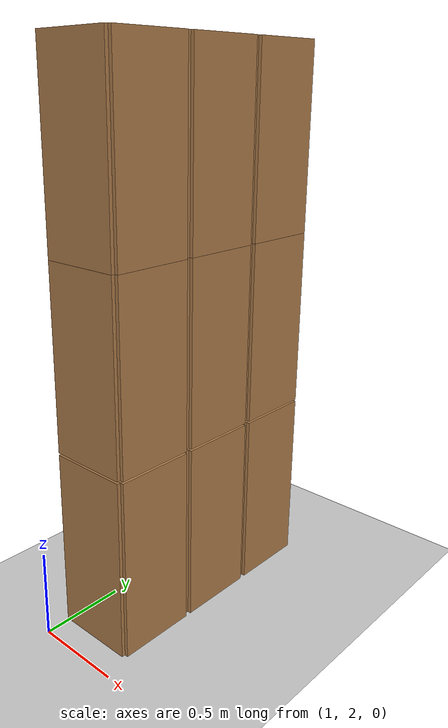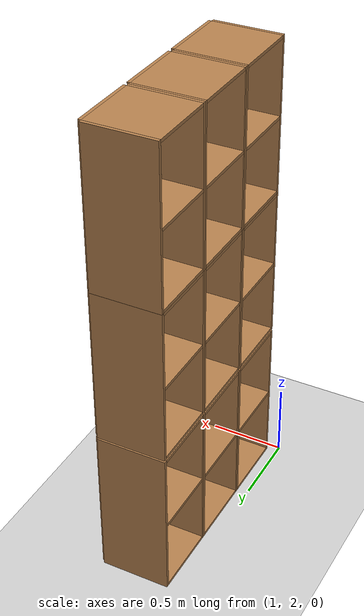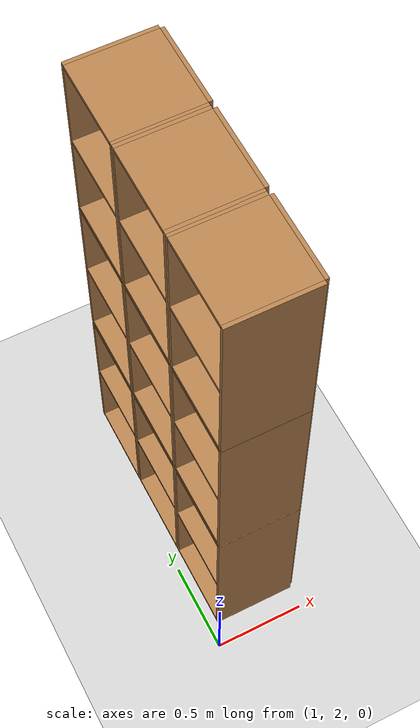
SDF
<sdf version="1.6">
 <world name="default">
  <model name="ground_plane">
   <static>1</static>
   <link name="link">
    <collision name="collision">
     <geometry><plane><normal>0 0 1</normal><size>100 100</size></plane></geometry>
     <surface>
      <contact><collide_bitmask>65535</collide_bitmask></contact>
      <friction><ode><mu>100</mu><mu2>50</mu2></ode></friction>
     </surface>
    </collision>
    <visual name="visual">
     <cast_shadows>0</cast_shadows>
     <geometry><plane><normal>0 0 1</normal><size>100 100</size></plane></geometry>
     <material>
      <script><uri>file://media/materials/scripts/gazebo.material</uri><name>Gazebo/Grey</name></script>
     </material>
    </visual>
   </link>
  </model>
  <model name="Locker18_clone_4_clone_2_clone_1">
   <model name="Locker18">
    <model name="Locker3">
     <model name="cabinet">
      <static>1</static>
      <link name="cabinet_bottom_plate">
       <inertial>
        <pose>0 0 -1 0 -0 0</pose>
        <inertia><ixx>2.05</ixx><ixy>0</ixy><ixz>0</ixz><iyy>2.05</iyy><iyz>0</iyz><izz>2.05</izz></inertia>
        <mass>25</mass>
       </inertial>
       <collision name="cabinet_bottom_plate_geom">
        <pose>0 0 0.01 0 -0 0</pose>
        <geometry><box><size>0.45 0.45 0.02</size></box></geometry>
       </collision>
       <visual name="cabinet_bottom_plate_geom_visual">
        <pose>0 0 0.01 0 -0 0</pose>
        <geometry><box><size>0.45 0.45 0.02</size></box></geometry>
        <material>
         <script><uri>file://media/materials/scripts/gazebo.material</uri><name>Gazebo/Wood</name></script>
        </material>
       </visual>
       <collision name="cabinet_bottom_plate_geom_cabinet_back_plate">
        <pose>0.235 0 0.51 0 -0 0</pose>
        <geometry><box><size>0.02 0.45 1.02</size></box></geometry>
       </collision>
       <visual name="cabinet_bottom_plate_geom_cabinet_back_plate_visual">
        <pose>0.235 0 0.51 0 -0 0</pose>
        <geometry><box><size>0.02 0.45 1.02</size></box></geometry>
        <material>
         <script><uri>file://media/materials/scripts/gazebo.material</uri><name>Gazebo/Wood</name></script>
        </material>
       </visual>
       <collision name="cabinet_bottom_plate_geom_cabinet_left_plate">
        <pose>0 0.235 0.51 0 -0 0</pose>
        <geometry><box><size>0.45 0.02 1.02</size></box></geometry>
       </collision>
       <visual name="cabinet_bottom_plate_geom_cabinet_left_plate_visual">
        <pose>0 0.235 0.51 0 -0 0</pose>
        <geometry><box><size>0.45 0.02 1.02</size></box></geometry>
        <material>
         <script><uri>file://media/materials/scripts/gazebo.material</uri><name>Gazebo/Wood</name></script>
        </material>
       </visual>
       <collision name="cabinet_bottom_plate_geom_cabinet_middle_plate">
        <pose>0 0 0.51 0 -0 0</pose>
        <geometry><box><size>0.45 0.45 0.02</size></box></geometry>
       </collision>
       <visual name="cabinet_bottom_plate_geom_cabinet_middle_plate_visual">
        <pose>0 0 0.51 0 -0 0</pose>
        <geometry><box><size>0.45 0.45 0.02</size></box></geometry>
        <material>
         <script><uri>file://media/materials/scripts/gazebo.material</uri><name>Gazebo/Wood</name></script>
        </material>
       </visual>
       <collision name="cabinet_bottom_plate_geom_cabinet_right_plate">
        <pose>0 -0.235 0.51 0 -0 0</pose>
        <geometry><box><size>0.45 0.02 1.02</size></box></geometry>
       </collision>
       <visual name="cabinet_bottom_plate_geom_cabinet_right_plate_visual">
        <pose>0 -0.235 0.51 0 -0 0</pose>
        <geometry><box><size>0.45 0.02 1.02</size></box></geometry>
        <material>
         <script><uri>file://media/materials/scripts/gazebo.material</uri><name>Gazebo/Wood</name></script>
        </material>
       </visual>
       <collision name="cabinet_bottom_plate_geom_cabinet_top_plate">
        <pose>0 0 1.01 0 -0 0</pose>
        <geometry><box><size>0.45 0.45 0.02</size></box></geometry>
       </collision>
       <visual name="cabinet_bottom_plate_geom_cabinet_top_plate_visual">
        <pose>0 0 1.01 0 -0 0</pose>
        <geometry><box><size>0.45 0.45 0.02</size></box></geometry>
        <material>
         <script><uri>file://media/materials/scripts/gazebo.material</uri><name>Gazebo/Wood</name></script>
        </material>
       </visual>
      </link>
      <pose>-0.676968 1.45758 0 0 -0 0</pose>
     </model>
     <model name="cabinet_clone">
      <static>1</static>
      <link name="cabinet_bottom_plate">
       <inertial>
        <pose>0 0 -1 0 -0 0</pose>
        <inertia><ixx>2.05</ixx><ixy>0</ixy><ixz>0</ixz><iyy>2.05</iyy><iyz>0</iyz><izz>2.05</izz></inertia>
        <mass>25</mass>
       </inertial>
       <collision name="cabinet_bottom_plate_geom">
        <pose>0 0 0.01 0 -0 0</pose>
        <geometry><box><size>0.45 0.45 0.02</size></box></geometry>
       </collision>
       <visual name="cabinet_bottom_plate_geom_visual">
        <pose>0 0 0.01 0 -0 0</pose>
        <geometry><box><size>0.45 0.45 0.02</size></box></geometry>
        <material>
         <script><uri>file://media/materials/scripts/gazebo.material</uri><name>Gazebo/Wood</name></script>
        </material>
       </visual>
       <collision name="cabinet_bottom_plate_geom_cabinet_back_plate">
        <pose>0.235 0 0.51 0 -0 0</pose>
        <geometry><box><size>0.02 0.45 1.02</size></box></geometry>
       </collision>
       <visual name="cabinet_bottom_plate_geom_cabinet_back_plate_visual">
        <pose>0.235 0 0.51 0 -0 0</pose>
        <geometry><box><size>0.02 0.45 1.02</size></box></geometry>
        <material>
         <script><uri>file://media/materials/scripts/gazebo.material</uri><name>Gazebo/Wood</name></script>
        </material>
       </visual>
       <collision name="cabinet_bottom_plate_geom_cabinet_left_plate">
        <pose>0 0.235 0.51 0 -0 0</pose>
        <geometry><box><size>0.45 0.02 1.02</size></box></geometry>
       </collision>
       <visual name="cabinet_bottom_plate_geom_cabinet_left_plate_visual">
        <pose>0 0.235 0.51 0 -0 0</pose>
        <geometry><box><size>0.45 0.02 1.02</size></box></geometry>
        <material>
         <script><uri>file://media/materials/scripts/gazebo.material</uri><name>Gazebo/Wood</name></script>
        </material>
       </visual>
       <collision name="cabinet_bottom_plate_geom_cabinet_middle_plate">
        <pose>0 0 0.51 0 -0 0</pose>
        <geometry><box><size>0.45 0.45 0.02</size></box></geometry>
       </collision>
       <visual name="cabinet_bottom_plate_geom_cabinet_middle_plate_visual">
        <pose>0 0 0.51 0 -0 0</pose>
        <geometry><box><size>0.45 0.45 0.02</size></box></geometry>
        <material>
         <script><uri>file://media/materials/scripts/gazebo.material</uri><name>Gazebo/Wood</name></script>
        </material>
       </visual>
       <collision name="cabinet_bottom_plate_geom_cabinet_right_plate">
        <pose>0 -0.235 0.51 0 -0 0</pose>
        <geometry><box><size>0.45 0.02 1.02</size></box></geometry>
       </collision>
       <visual name="cabinet_bottom_plate_geom_cabinet_right_plate_visual">
        <pose>0 -0.235 0.51 0 -0 0</pose>
        <geometry><box><size>0.45 0.02 1.02</size></box></geometry>
        <material>
         <script><uri>file://media/materials/scripts/gazebo.material</uri><name>Gazebo/Wood</name></script>
        </material>
       </visual>
       <collision name="cabinet_bottom_plate_geom_cabinet_top_plate">
        <pose>0 0 1.01 0 -0 0</pose>
        <geometry><box><size>0.45 0.45 0.02</size></box></geometry>
       </collision>
       <visual name="cabinet_bottom_plate_geom_cabinet_top_plate_visual">
        <pose>0 0 1.01 0 -0 0</pose>
        <geometry><box><size>0.45 0.45 0.02</size></box></geometry>
        <material>
         <script><uri>file://media/materials/scripts/gazebo.material</uri><name>Gazebo/Wood</name></script>
        </material>
       </visual>
      </link>
      <pose>-0.676968 0.970971 0 0 -0 0</pose>
     </model>
     <model name="cabinet_clone_0">
      <static>1</static>
      <link name="cabinet_bottom_plate">
       <inertial>
        <pose>0 0 -1 0 -0 0</pose>
        <inertia><ixx>2.05</ixx><ixy>0</ixy><ixz>0</ixz><iyy>2.05</iyy><iyz>0</iyz><izz>2.05</izz></inertia>
        <mass>25</mass>
       </inertial>
       <collision name="cabinet_bottom_plate_geom">
        <pose>0 0 0.01 0 -0 0</pose>
        <geometry><box><size>0.45 0.45 0.02</size></box></geometry>
       </collision>
       <visual name="cabinet_bottom_plate_geom_visual">
        <pose>0 0 0.01 0 -0 0</pose>
        <geometry><box><size>0.45 0.45 0.02</size></box></geometry>
        <material>
         <script><uri>file://media/materials/scripts/gazebo.material</uri><name>Gazebo/Wood</name></script>
        </material>
       </visual>
       <collision name="cabinet_bottom_plate_geom_cabinet_back_plate">
        <pose>0.235 0 0.51 0 -0 0</pose>
        <geometry><box><size>0.02 0.45 1.02</size></box></geometry>
       </collision>
       <visual name="cabinet_bottom_plate_geom_cabinet_back_plate_visual">
        <pose>0.235 0 0.51 0 -0 0</pose>
        <geometry><box><size>0.02 0.45 1.02</size></box></geometry>
        <material>
         <script><uri>file://media/materials/scripts/gazebo.material</uri><name>Gazebo/Wood</name></script>
        </material>
       </visual>
       <collision name="cabinet_bottom_plate_geom_cabinet_left_plate">
        <pose>0 0.235 0.51 0 -0 0</pose>
        <geometry><box><size>0.45 0.02 1.02</size></box></geometry>
       </collision>
       <visual name="cabinet_bottom_plate_geom_cabinet_left_plate_visual">
        <pose>0 0.235 0.51 0 -0 0</pose>
        <geometry><box><size>0.45 0.02 1.02</size></box></geometry>
        <material>
         <script><uri>file://media/materials/scripts/gazebo.material</uri><name>Gazebo/Wood</name></script>
        </material>
       </visual>
       <collision name="cabinet_bottom_plate_geom_cabinet_middle_plate">
        <pose>0 0 0.51 0 -0 0</pose>
        <geometry><box><size>0.45 0.45 0.02</size></box></geometry>
       </collision>
       <visual name="cabinet_bottom_plate_geom_cabinet_middle_plate_visual">
        <pose>0 0 0.51 0 -0 0</pose>
        <geometry><box><size>0.45 0.45 0.02</size></box></geometry>
        <material>
         <script><uri>file://media/materials/scripts/gazebo.material</uri><name>Gazebo/Wood</name></script>
        </material>
       </visual>
       <collision name="cabinet_bottom_plate_geom_cabinet_right_plate">
        <pose>0 -0.235 0.51 0 -0 0</pose>
        <geometry><box><size>0.45 0.02 1.02</size></box></geometry>
       </collision>
       <visual name="cabinet_bottom_plate_geom_cabinet_right_plate_visual">
        <pose>0 -0.235 0.51 0 -0 0</pose>
        <geometry><box><size>0.45 0.02 1.02</size></box></geometry>
        <material>
         <script><uri>file://media/materials/scripts/gazebo.material</uri><name>Gazebo/Wood</name></script>
        </material>
       </visual>
       <collision name="cabinet_bottom_plate_geom_cabinet_top_plate">
        <pose>0 0 1.01 0 -0 0</pose>
        <geometry><box><size>0.45 0.45 0.02</size></box></geometry>
       </collision>
       <visual name="cabinet_bottom_plate_geom_cabinet_top_plate_visual">
        <pose>0 0 1.01 0 -0 0</pose>
        <geometry><box><size>0.45 0.45 0.02</size></box></geometry>
        <material>
         <script><uri>file://media/materials/scripts/gazebo.material</uri><name>Gazebo/Wood</name></script>
        </material>
       </visual>
      </link>
      <pose>-0.676968 0.48391 0 0 -0 0</pose>
     </model>
     <static>0</static>
     <pose>0 3e-06 -1.02763 0 -0 0</pose>
    </model>
    <model name="Locker3_clone">
     <model name="cabinet">
      <static>1</static>
      <link name="cabinet_bottom_plate">
       <inertial>
        <pose>0 0 -1 0 -0 0</pose>
        <inertia><ixx>2.05</ixx><ixy>0</ixy><ixz>0</ixz><iyy>2.05</iyy><iyz>0</iyz><izz>2.05</izz></inertia>
        <mass>25</mass>
       </inertial>
       <collision name="cabinet_bottom_plate_geom">
        <pose>0 0 0.01 0 -0 0</pose>
        <geometry><box><size>0.45 0.45 0.02</size></box></geometry>
       </collision>
       <visual name="cabinet_bottom_plate_geom_visual">
        <pose>0 0 0.01 0 -0 0</pose>
        <geometry><box><size>0.45 0.45 0.02</size></box></geometry>
        <material>
         <script><uri>file://media/materials/scripts/gazebo.material</uri><name>Gazebo/Wood</name></script>
        </material>
       </visual>
       <collision name="cabinet_bottom_plate_geom_cabinet_back_plate">
        <pose>0.235 0 0.51 0 -0 0</pose>
        <geometry><box><size>0.02 0.45 1.02</size></box></geometry>
       </collision>
       <visual name="cabinet_bottom_plate_geom_cabinet_back_plate_visual">
        <pose>0.235 0 0.51 0 -0 0</pose>
        <geometry><box><size>0.02 0.45 1.02</size></box></geometry>
        <material>
         <script><uri>file://media/materials/scripts/gazebo.material</uri><name>Gazebo/Wood</name></script>
        </material>
       </visual>
       <collision name="cabinet_bottom_plate_geom_cabinet_left_plate">
        <pose>0 0.235 0.51 0 -0 0</pose>
        <geometry><box><size>0.45 0.02 1.02</size></box></geometry>
       </collision>
       <visual name="cabinet_bottom_plate_geom_cabinet_left_plate_visual">
        <pose>0 0.235 0.51 0 -0 0</pose>
        <geometry><box><size>0.45 0.02 1.02</size></box></geometry>
        <material>
         <script><uri>file://media/materials/scripts/gazebo.material</uri><name>Gazebo/Wood</name></script>
        </material>
       </visual>
       <collision name="cabinet_bottom_plate_geom_cabinet_middle_plate">
        <pose>0 0 0.51 0 -0 0</pose>
        <geometry><box><size>0.45 0.45 0.02</size></box></geometry>
       </collision>
       <visual name="cabinet_bottom_plate_geom_cabinet_middle_plate_visual">
        <pose>0 0 0.51 0 -0 0</pose>
        <geometry><box><size>0.45 0.45 0.02</size></box></geometry>
        <material>
         <script><uri>file://media/materials/scripts/gazebo.material</uri><name>Gazebo/Wood</name></script>
        </material>
       </visual>
       <collision name="cabinet_bottom_plate_geom_cabinet_right_plate">
        <pose>0 -0.235 0.51 0 -0 0</pose>
        <geometry><box><size>0.45 0.02 1.02</size></box></geometry>
       </collision>
       <visual name="cabinet_bottom_plate_geom_cabinet_right_plate_visual">
        <pose>0 -0.235 0.51 0 -0 0</pose>
        <geometry><box><size>0.45 0.02 1.02</size></box></geometry>
        <material>
         <script><uri>file://media/materials/scripts/gazebo.material</uri><name>Gazebo/Wood</name></script>
        </material>
       </visual>
       <collision name="cabinet_bottom_plate_geom_cabinet_top_plate">
        <pose>0 0 1.01 0 -0 0</pose>
        <geometry><box><size>0.45 0.45 0.02</size></box></geometry>
       </collision>
       <visual name="cabinet_bottom_plate_geom_cabinet_top_plate_visual">
        <pose>0 0 1.01 0 -0 0</pose>
        <geometry><box><size>0.45 0.45 0.02</size></box></geometry>
        <material>
         <script><uri>file://media/materials/scripts/gazebo.material</uri><name>Gazebo/Wood</name></script>
        </material>
       </visual>
      </link>
      <pose>-0.676968 1.45758 0 0 -0 0</pose>
     </model>
     <model name="cabinet_clone">
      <static>1</static>
      <link name="cabinet_bottom_plate">
       <inertial>
        <pose>0 0 -1 0 -0 0</pose>
        <inertia><ixx>2.05</ixx><ixy>0</ixy><ixz>0</ixz><iyy>2.05</iyy><iyz>0</iyz><izz>2.05</izz></inertia>
        <mass>25</mass>
       </inertial>
       <collision name="cabinet_bottom_plate_geom">
        <pose>0 0 0.01 0 -0 0</pose>
        <geometry><box><size>0.45 0.45 0.02</size></box></geometry>
       </collision>
       <visual name="cabinet_bottom_plate_geom_visual">
        <pose>0 0 0.01 0 -0 0</pose>
        <geometry><box><size>0.45 0.45 0.02</size></box></geometry>
        <material>
         <script><uri>file://media/materials/scripts/gazebo.material</uri><name>Gazebo/Wood</name></script>
        </material>
       </visual>
       <collision name="cabinet_bottom_plate_geom_cabinet_back_plate">
        <pose>0.235 0 0.51 0 -0 0</pose>
        <geometry><box><size>0.02 0.45 1.02</size></box></geometry>
       </collision>
       <visual name="cabinet_bottom_plate_geom_cabinet_back_plate_visual">
        <pose>0.235 0 0.51 0 -0 0</pose>
        <geometry><box><size>0.02 0.45 1.02</size></box></geometry>
        <material>
         <script><uri>file://media/materials/scripts/gazebo.material</uri><name>Gazebo/Wood</name></script>
        </material>
       </visual>
       <collision name="cabinet_bottom_plate_geom_cabinet_left_plate">
        <pose>0 0.235 0.51 0 -0 0</pose>
        <geometry><box><size>0.45 0.02 1.02</size></box></geometry>
       </collision>
       <visual name="cabinet_bottom_plate_geom_cabinet_left_plate_visual">
        <pose>0 0.235 0.51 0 -0 0</pose>
        <geometry><box><size>0.45 0.02 1.02</size></box></geometry>
        <material>
         <script><uri>file://media/materials/scripts/gazebo.material</uri><name>Gazebo/Wood</name></script>
        </material>
       </visual>
       <collision name="cabinet_bottom_plate_geom_cabinet_middle_plate">
        <pose>0 0 0.51 0 -0 0</pose>
        <geometry><box><size>0.45 0.45 0.02</size></box></geometry>
       </collision>
       <visual name="cabinet_bottom_plate_geom_cabinet_middle_plate_visual">
        <pose>0 0 0.51 0 -0 0</pose>
        <geometry><box><size>0.45 0.45 0.02</size></box></geometry>
        <material>
         <script><uri>file://media/materials/scripts/gazebo.material</uri><name>Gazebo/Wood</name></script>
        </material>
       </visual>
       <collision name="cabinet_bottom_plate_geom_cabinet_right_plate">
        <pose>0 -0.235 0.51 0 -0 0</pose>
        <geometry><box><size>0.45 0.02 1.02</size></box></geometry>
       </collision>
       <visual name="cabinet_bottom_plate_geom_cabinet_right_plate_visual">
        <pose>0 -0.235 0.51 0 -0 0</pose>
        <geometry><box><size>0.45 0.02 1.02</size></box></geometry>
        <material>
         <script><uri>file://media/materials/scripts/gazebo.material</uri><name>Gazebo/Wood</name></script>
        </material>
       </visual>
       <collision name="cabinet_bottom_plate_geom_cabinet_top_plate">
        <pose>0 0 1.01 0 -0 0</pose>
        <geometry><box><size>0.45 0.45 0.02</size></box></geometry>
       </collision>
       <visual name="cabinet_bottom_plate_geom_cabinet_top_plate_visual">
        <pose>0 0 1.01 0 -0 0</pose>
        <geometry><box><size>0.45 0.45 0.02</size></box></geometry>
        <material>
         <script><uri>file://media/materials/scripts/gazebo.material</uri><name>Gazebo/Wood</name></script>
        </material>
       </visual>
      </link>
      <pose>-0.676968 0.970971 0 0 -0 0</pose>
     </model>
     <model name="cabinet_clone_0">
      <static>1</static>
      <link name="cabinet_bottom_plate">
       <inertial>
        <pose>0 0 -1 0 -0 0</pose>
        <inertia><ixx>2.05</ixx><ixy>0</ixy><ixz>0</ixz><iyy>2.05</iyy><iyz>0</iyz><izz>2.05</izz></inertia>
        <mass>25</mass>
       </inertial>
       <collision name="cabinet_bottom_plate_geom">
        <pose>0 0 0.01 0 -0 0</pose>
        <geometry><box><size>0.45 0.45 0.02</size></box></geometry>
       </collision>
       <visual name="cabinet_bottom_plate_geom_visual">
        <pose>0 0 0.01 0 -0 0</pose>
        <geometry><box><size>0.45 0.45 0.02</size></box></geometry>
        <material>
         <script><uri>file://media/materials/scripts/gazebo.material</uri><name>Gazebo/Wood</name></script>
        </material>
       </visual>
       <collision name="cabinet_bottom_plate_geom_cabinet_back_plate">
        <pose>0.235 0 0.51 0 -0 0</pose>
        <geometry><box><size>0.02 0.45 1.02</size></box></geometry>
       </collision>
       <visual name="cabinet_bottom_plate_geom_cabinet_back_plate_visual">
        <pose>0.235 0 0.51 0 -0 0</pose>
        <geometry><box><size>0.02 0.45 1.02</size></box></geometry>
        <material>
         <script><uri>file://media/materials/scripts/gazebo.material</uri><name>Gazebo/Wood</name></script>
        </material>
       </visual>
       <collision name="cabinet_bottom_plate_geom_cabinet_left_plate">
        <pose>0 0.235 0.51 0 -0 0</pose>
        <geometry><box><size>0.45 0.02 1.02</size></box></geometry>
       </collision>
       <visual name="cabinet_bottom_plate_geom_cabinet_left_plate_visual">
        <pose>0 0.235 0.51 0 -0 0</pose>
        <geometry><box><size>0.45 0.02 1.02</size></box></geometry>
        <material>
         <script><uri>file://media/materials/scripts/gazebo.material</uri><name>Gazebo/Wood</name></script>
        </material>
       </visual>
       <collision name="cabinet_bottom_plate_geom_cabinet_middle_plate">
        <pose>0 0 0.51 0 -0 0</pose>
        <geometry><box><size>0.45 0.45 0.02</size></box></geometry>
       </collision>
       <visual name="cabinet_bottom_plate_geom_cabinet_middle_plate_visual">
        <pose>0 0 0.51 0 -0 0</pose>
        <geometry><box><size>0.45 0.45 0.02</size></box></geometry>
        <material>
         <script><uri>file://media/materials/scripts/gazebo.material</uri><name>Gazebo/Wood</name></script>
        </material>
       </visual>
       <collision name="cabinet_bottom_plate_geom_cabinet_right_plate">
        <pose>0 -0.235 0.51 0 -0 0</pose>
        <geometry><box><size>0.45 0.02 1.02</size></box></geometry>
       </collision>
       <visual name="cabinet_bottom_plate_geom_cabinet_right_plate_visual">
        <pose>0 -0.235 0.51 0 -0 0</pose>
        <geometry><box><size>0.45 0.02 1.02</size></box></geometry>
        <material>
         <script><uri>file://media/materials/scripts/gazebo.material</uri><name>Gazebo/Wood</name></script>
        </material>
       </visual>
       <collision name="cabinet_bottom_plate_geom_cabinet_top_plate">
        <pose>0 0 1.01 0 -0 0</pose>
        <geometry><box><size>0.45 0.45 0.02</size></box></geometry>
       </collision>
       <visual name="cabinet_bottom_plate_geom_cabinet_top_plate_visual">
        <pose>0 0 1.01 0 -0 0</pose>
        <geometry><box><size>0.45 0.45 0.02</size></box></geometry>
        <material>
         <script><uri>file://media/materials/scripts/gazebo.material</uri><name>Gazebo/Wood</name></script>
        </material>
       </visual>
      </link>
      <pose>-0.676968 0.48391 0 0 -0 0</pose>
     </model>
     <static>0</static>
     <pose>0 3e-06 0.003717 0 -0 0</pose>
    </model>
    <model name="Locker3_clone_clone">
     <model name="cabinet">
      <static>1</static>
      <link name="cabinet_bottom_plate">
       <inertial>
        <pose>0 0 -1 0 -0 0</pose>
        <inertia><ixx>2.05</ixx><ixy>0</ixy><ixz>0</ixz><iyy>2.05</iyy><iyz>0</iyz><izz>2.05</izz></inertia>
        <mass>25</mass>
       </inertial>
       <collision name="cabinet_bottom_plate_geom">
        <pose>0 0 0.01 0 -0 0</pose>
        <geometry><box><size>0.45 0.45 0.02</size></box></geometry>
       </collision>
       <visual name="cabinet_bottom_plate_geom_visual">
        <pose>0 0 0.01 0 -0 0</pose>
        <geometry><box><size>0.45 0.45 0.02</size></box></geometry>
        <material>
         <script><uri>file://media/materials/scripts/gazebo.material</uri><name>Gazebo/Wood</name></script>
        </material>
       </visual>
       <collision name="cabinet_bottom_plate_geom_cabinet_back_plate">
        <pose>0.235 0 0.51 0 -0 0</pose>
        <geometry><box><size>0.02 0.45 1.02</size></box></geometry>
       </collision>
       <visual name="cabinet_bottom_plate_geom_cabinet_back_plate_visual">
        <pose>0.235 0 0.51 0 -0 0</pose>
        <geometry><box><size>0.02 0.45 1.02</size></box></geometry>
        <material>
         <script><uri>file://media/materials/scripts/gazebo.material</uri><name>Gazebo/Wood</name></script>
        </material>
       </visual>
       <collision name="cabinet_bottom_plate_geom_cabinet_left_plate">
        <pose>0 0.235 0.51 0 -0 0</pose>
        <geometry><box><size>0.45 0.02 1.02</size></box></geometry>
       </collision>
       <visual name="cabinet_bottom_plate_geom_cabinet_left_plate_visual">
        <pose>0 0.235 0.51 0 -0 0</pose>
        <geometry><box><size>0.45 0.02 1.02</size></box></geometry>
        <material>
         <script><uri>file://media/materials/scripts/gazebo.material</uri><name>Gazebo/Wood</name></script>
        </material>
       </visual>
       <collision name="cabinet_bottom_plate_geom_cabinet_middle_plate">
        <pose>0 0 0.51 0 -0 0</pose>
        <geometry><box><size>0.45 0.45 0.02</size></box></geometry>
       </collision>
       <visual name="cabinet_bottom_plate_geom_cabinet_middle_plate_visual">
        <pose>0 0 0.51 0 -0 0</pose>
        <geometry><box><size>0.45 0.45 0.02</size></box></geometry>
        <material>
         <script><uri>file://media/materials/scripts/gazebo.material</uri><name>Gazebo/Wood</name></script>
        </material>
       </visual>
       <collision name="cabinet_bottom_plate_geom_cabinet_right_plate">
        <pose>0 -0.235 0.51 0 -0 0</pose>
        <geometry><box><size>0.45 0.02 1.02</size></box></geometry>
       </collision>
       <visual name="cabinet_bottom_plate_geom_cabinet_right_plate_visual">
        <pose>0 -0.235 0.51 0 -0 0</pose>
        <geometry><box><size>0.45 0.02 1.02</size></box></geometry>
        <material>
         <script><uri>file://media/materials/scripts/gazebo.material</uri><name>Gazebo/Wood</name></script>
        </material>
       </visual>
       <collision name="cabinet_bottom_plate_geom_cabinet_top_plate">
        <pose>0 0 1.01 0 -0 0</pose>
        <geometry><box><size>0.45 0.45 0.02</size></box></geometry>
       </collision>
       <visual name="cabinet_bottom_plate_geom_cabinet_top_plate_visual">
        <pose>0 0 1.01 0 -0 0</pose>
        <geometry><box><size>0.45 0.45 0.02</size></box></geometry>
        <material>
         <script><uri>file://media/materials/scripts/gazebo.material</uri><name>Gazebo/Wood</name></script>
        </material>
       </visual>
      </link>
      <pose>-0.676968 1.45758 0 0 -0 0</pose>
     </model>
     <model name="cabinet_clone">
      <static>1</static>
      <link name="cabinet_bottom_plate">
       <inertial>
        <pose>0 0 -1 0 -0 0</pose>
        <inertia><ixx>2.05</ixx><ixy>0</ixy><ixz>0</ixz><iyy>2.05</iyy><iyz>0</iyz><izz>2.05</izz></inertia>
        <mass>25</mass>
       </inertial>
       <collision name="cabinet_bottom_plate_geom">
        <pose>0 0 0.01 0 -0 0</pose>
        <geometry><box><size>0.45 0.45 0.02</size></box></geometry>
       </collision>
       <visual name="cabinet_bottom_plate_geom_visual">
        <pose>0 0 0.01 0 -0 0</pose>
        <geometry><box><size>0.45 0.45 0.02</size></box></geometry>
        <material>
         <script><uri>file://media/materials/scripts/gazebo.material</uri><name>Gazebo/Wood</name></script>
        </material>
       </visual>
       <collision name="cabinet_bottom_plate_geom_cabinet_back_plate">
        <pose>0.235 0 0.51 0 -0 0</pose>
        <geometry><box><size>0.02 0.45 1.02</size></box></geometry>
       </collision>
       <visual name="cabinet_bottom_plate_geom_cabinet_back_plate_visual">
        <pose>0.235 0 0.51 0 -0 0</pose>
        <geometry><box><size>0.02 0.45 1.02</size></box></geometry>
        <material>
         <script><uri>file://media/materials/scripts/gazebo.material</uri><name>Gazebo/Wood</name></script>
        </material>
       </visual>
       <collision name="cabinet_bottom_plate_geom_cabinet_left_plate">
        <pose>0 0.235 0.51 0 -0 0</pose>
        <geometry><box><size>0.45 0.02 1.02</size></box></geometry>
       </collision>
       <visual name="cabinet_bottom_plate_geom_cabinet_left_plate_visual">
        <pose>0 0.235 0.51 0 -0 0</pose>
        <geometry><box><size>0.45 0.02 1.02</size></box></geometry>
        <material>
         <script><uri>file://media/materials/scripts/gazebo.material</uri><name>Gazebo/Wood</name></script>
        </material>
       </visual>
       <collision name="cabinet_bottom_plate_geom_cabinet_middle_plate">
        <pose>0 0 0.51 0 -0 0</pose>
        <geometry><box><size>0.45 0.45 0.02</size></box></geometry>
       </collision>
       <visual name="cabinet_bottom_plate_geom_cabinet_middle_plate_visual">
        <pose>0 0 0.51 0 -0 0</pose>
        <geometry><box><size>0.45 0.45 0.02</size></box></geometry>
        <material>
         <script><uri>file://media/materials/scripts/gazebo.material</uri><name>Gazebo/Wood</name></script>
        </material>
       </visual>
       <collision name="cabinet_bottom_plate_geom_cabinet_right_plate">
        <pose>0 -0.235 0.51 0 -0 0</pose>
        <geometry><box><size>0.45 0.02 1.02</size></box></geometry>
       </collision>
       <visual name="cabinet_bottom_plate_geom_cabinet_right_plate_visual">
        <pose>0 -0.235 0.51 0 -0 0</pose>
        <geometry><box><size>0.45 0.02 1.02</size></box></geometry>
        <material>
         <script><uri>file://media/materials/scripts/gazebo.material</uri><name>Gazebo/Wood</name></script>
        </material>
       </visual>
       <collision name="cabinet_bottom_plate_geom_cabinet_top_plate">
        <pose>0 0 1.01 0 -0 0</pose>
        <geometry><box><size>0.45 0.45 0.02</size></box></geometry>
       </collision>
       <visual name="cabinet_bottom_plate_geom_cabinet_top_plate_visual">
        <pose>0 0 1.01 0 -0 0</pose>
        <geometry><box><size>0.45 0.45 0.02</size></box></geometry>
        <material>
         <script><uri>file://media/materials/scripts/gazebo.material</uri><name>Gazebo/Wood</name></script>
        </material>
       </visual>
      </link>
      <pose>-0.676968 0.970971 0 0 -0 0</pose>
     </model>
     <model name="cabinet_clone_0">
      <static>1</static>
      <link name="cabinet_bottom_plate">
       <inertial>
        <pose>0 0 -1 0 -0 0</pose>
        <inertia><ixx>2.05</ixx><ixy>0</ixy><ixz>0</ixz><iyy>2.05</iyy><iyz>0</iyz><izz>2.05</izz></inertia>
        <mass>25</mass>
       </inertial>
       <collision name="cabinet_bottom_plate_geom">
        <pose>0 0 0.01 0 -0 0</pose>
        <geometry><box><size>0.45 0.45 0.02</size></box></geometry>
       </collision>
       <visual name="cabinet_bottom_plate_geom_visual">
        <pose>0 0 0.01 0 -0 0</pose>
        <geometry><box><size>0.45 0.45 0.02</size></box></geometry>
        <material>
         <script><uri>file://media/materials/scripts/gazebo.material</uri><name>Gazebo/Wood</name></script>
        </material>
       </visual>
       <collision name="cabinet_bottom_plate_geom_cabinet_back_plate">
        <pose>0.235 0 0.51 0 -0 0</pose>
        <geometry><box><size>0.02 0.45 1.02</size></box></geometry>
       </collision>
       <visual name="cabinet_bottom_plate_geom_cabinet_back_plate_visual">
        <pose>0.235 0 0.51 0 -0 0</pose>
        <geometry><box><size>0.02 0.45 1.02</size></box></geometry>
        <material>
         <script><uri>file://media/materials/scripts/gazebo.material</uri><name>Gazebo/Wood</name></script>
        </material>
       </visual>
       <collision name="cabinet_bottom_plate_geom_cabinet_left_plate">
        <pose>0 0.235 0.51 0 -0 0</pose>
        <geometry><box><size>0.45 0.02 1.02</size></box></geometry>
       </collision>
       <visual name="cabinet_bottom_plate_geom_cabinet_left_plate_visual">
        <pose>0 0.235 0.51 0 -0 0</pose>
        <geometry><box><size>0.45 0.02 1.02</size></box></geometry>
        <material>
         <script><uri>file://media/materials/scripts/gazebo.material</uri><name>Gazebo/Wood</name></script>
        </material>
       </visual>
       <collision name="cabinet_bottom_plate_geom_cabinet_middle_plate">
        <pose>0 0 0.51 0 -0 0</pose>
        <geometry><box><size>0.45 0.45 0.02</size></box></geometry>
       </collision>
       <visual name="cabinet_bottom_plate_geom_cabinet_middle_plate_visual">
        <pose>0 0 0.51 0 -0 0</pose>
        <geometry><box><size>0.45 0.45 0.02</size></box></geometry>
        <material>
         <script><uri>file://media/materials/scripts/gazebo.material</uri><name>Gazebo/Wood</name></script>
        </material>
       </visual>
       <collision name="cabinet_bottom_plate_geom_cabinet_right_plate">
        <pose>0 -0.235 0.51 0 -0 0</pose>
        <geometry><box><size>0.45 0.02 1.02</size></box></geometry>
       </collision>
       <visual name="cabinet_bottom_plate_geom_cabinet_right_plate_visual">
        <pose>0 -0.235 0.51 0 -0 0</pose>
        <geometry><box><size>0.45 0.02 1.02</size></box></geometry>
        <material>
         <script><uri>file://media/materials/scripts/gazebo.material</uri><name>Gazebo/Wood</name></script>
        </material>
       </visual>
       <collision name="cabinet_bottom_plate_geom_cabinet_top_plate">
        <pose>0 0 1.01 0 -0 0</pose>
        <geometry><box><size>0.45 0.45 0.02</size></box></geometry>
       </collision>
       <visual name="cabinet_bottom_plate_geom_cabinet_top_plate_visual">
        <pose>0 0 1.01 0 -0 0</pose>
        <geometry><box><size>0.45 0.45 0.02</size></box></geometry>
        <material>
         <script><uri>file://media/materials/scripts/gazebo.material</uri><name>Gazebo/Wood</name></script>
        </material>
       </visual>
      </link>
      <pose>-0.676968 0.48391 0 0 -0 0</pose>
     </model>
     <static>0</static>
     <pose>0 3e-06 1.02391 0 -0 0</pose>
    </model>
    <static>0</static>
    <pose>-0 4e-06 4e-06 0 -0 0</pose>
   </model>
   <static>0</static>
   <pose>1.94577 1.8651 1.08672 0 -0 0</pose>
  </model>
 </world>
</sdf>
